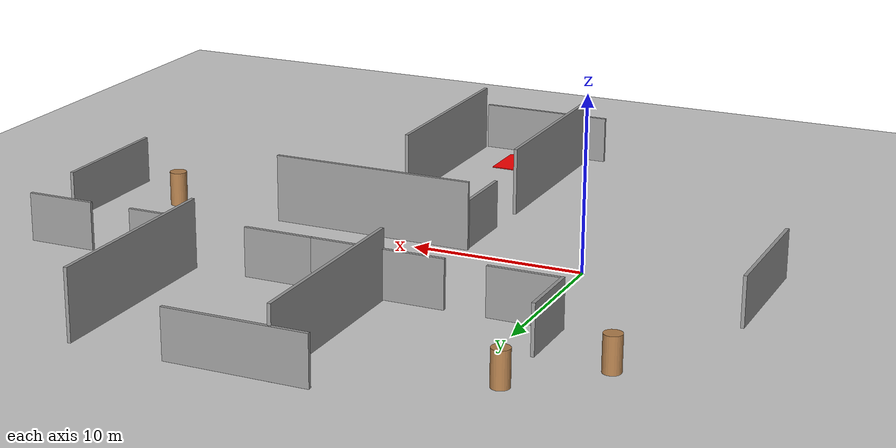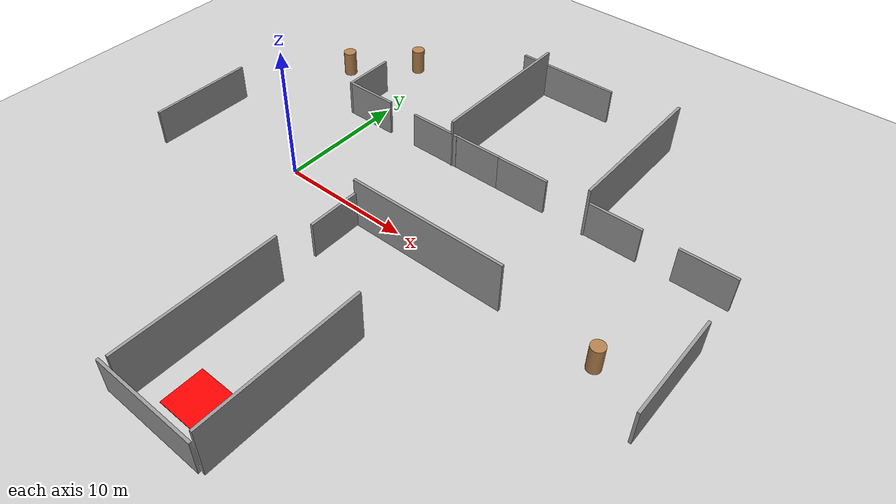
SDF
<sdf version="1.4">
 <world name="default">
  <scene><shadows>0</shadows></scene>
  <physics type="ode">
   <gravity>0 0 -9.81</gravity>
   <ode>
    <solver><type>quick</type><iters>20</iters><sor>1.0</sor></solver>
    <constraints>
     <cfm>0.0</cfm>
     <erp>0.2</erp>
     <contact_max_correcting_vel>100.0</contact_max_correcting_vel>
     <contact_surface_layer>0.0</contact_surface_layer>
    </constraints>
   </ode>
   <real_time_update_rate>1000</real_time_update_rate>
   <max_step_size>0.001</max_step_size>
   <real_time_factor>1</real_time_factor>
  </physics>
  <include><uri>model://sun</uri></include>
  <include><uri>model://ground_plane</uri></include>
  <include><uri>model://w1</uri><name>w1_bottom</name><pose>-10 0.0 0.0 0 0.0 -1.57</pose></include>
  <include><uri>model://w1</uri><name>w1_left</name><pose>10 20 0.0 0 0.0 0.0</pose></include>
  <include><uri>model://w1</uri><name>w1_top</name><pose>30 0.0 0.0 0 0.0 -1.57</pose></include>
  <include><uri>model://w1</uri><name>w1_right</name><pose>10 -20 0.0 0 0.0 0.0</pose></include>
  <include><uri>model://w3</uri><name>w3_no_room_1</name><pose>-6 12.1 0.0 0 0.0 0.0</pose></include>
  <include><uri>model://w3</uri><name>w3_no_room_2</name><pose>-1.9 16 0.0 0 0.0 1.57</pose></include>
  <include><uri>model://w2</uri><name>w3_room_1_1</name><pose>-1.9 10 0.0 0 0.0 1.57</pose></include>
  <include><uri>model://w2</uri><name>w3_room_1_2</name><pose>0.18 8.1 0.0 0 0.0 0.0</pose></include>
  <include><uri>model://w2</uri><name>w3_room_1_3</name><pose>6.5 8.1 0.0 0 0.0 0.0</pose></include>
  <include><uri>model://w4</uri><name>w4_room_1_3</name><pose>8.1 14 0.0 0 0.0 1.57</pose></include>
  <include><uri>model://w2</uri><name>w4_room_2_1</name><pose>10.17 8.11 0.0 0 0.0 0.0</pose></include>
  <include><uri>model://w2</uri><name>w4_room_2_2</name><pose>14.17 8.11 0.0 0 0.0 0.0</pose></include>
  <include><uri>model://w4</uri><name>w4_room_2_3</name><pose>19.4 14 0.0 0 0.0 1.57</pose></include>
  <include><uri>model://w2</uri><name>w4_room_3_1</name><pose>21.4 8.11 0.0 0 0.0 0.0</pose></include>
  <include><uri>model://w2</uri><name>w4_room_3_2</name><pose>27.9 8.11 0.0 0 0.0 0.0</pose></include>
  <include><uri>model://w4</uri><name>w4_warehouse_1</name><pose>7.2 -13.9 0.0 0 0.0 1.57</pose></include>
  <include><uri>model://w4</uri><name>w4_warehouse_2</name><pose>13.14 -1.0 0.0 0 0.0 0.0</pose></include>
  <include><uri>model://w3</uri><name>w4_warehouse_3</name><pose>25.9 -1.0 0.0 0 0.0 0.0</pose></include>
  <include><uri>model://w2</uri><name>w4_warehouse_4</name><pose>7.24 -3.1 0.0 0 0.0 1.57</pose></include>
  <include><uri>model://w4</uri><name>w4_warehouse_4</name><pose>14.2 -13.9 0.0 0 0.0 1.57</pose></include>
  <include>
   <uri>model://platform</uri>
   <name>recharge_platform</name>
   <pose>10.38 -17.2 0.035 0 0.0 0.0</pose>
  </include>
  <light name="marker_light" type="point">
   <cast_shadows>0</cast_shadows>
   <pose>1.7 7 1.8 0 0 0</pose>
   <diffuse>0.800000 0.800000 0.800000 1.000000</diffuse>
   <specular>0.100000 0.100000 0.100000 1.000000</specular>
   <attenuation>
    <range>1000.000000</range>
    <constant>0.900000</constant>
    <linear>0.010000</linear>
    <quadratic>0.001000</quadratic>
   </attenuation>
  </light>
  <light name="marker_light0" type="point">
   <cast_shadows>0</cast_shadows>
   <pose>6 -4.5 1.8 0 0 0</pose>
   <diffuse>0.800000 0.800000 0.800000 1.000000</diffuse>
   <specular>0.100000 0.100000 0.100000 1.000000</specular>
   <attenuation>
    <range>1000.000000</range>
    <constant>0.900000</constant>
    <linear>0.010000</linear>
    <quadratic>0.001000</quadratic>
   </attenuation>
  </light>
  <light name="marker_light01" type="point">
   <cast_shadows>0</cast_shadows>
   <pose>4 -4.5 1.8 0 0 0</pose>
   <diffuse>0.800000 0.800000 0.800000 1.000000</diffuse>
   <specular>0.100000 0.100000 0.100000 1.000000</specular>
   <attenuation>
    <range>1000.000000</range>
    <constant>0.900000</constant>
    <linear>0.010000</linear>
    <quadratic>0.001000</quadratic>
   </attenuation>
  </light>
  <light name="marker_light1" type="point">
   <cast_shadows>0</cast_shadows>
   <pose>24 18 1.8 0 0 0</pose>
   <diffuse>0.800000 0.800000 0.800000 1.000000</diffuse>
   <specular>0.100000 0.100000 0.100000 1.000000</specular>
   <attenuation>
    <range>1000.000000</range>
    <constant>0.900000</constant>
    <linear>0.010000</linear>
    <quadratic>0.001000</quadratic>
   </attenuation>
  </light>
  <light name="marker_light2" type="point">
   <cast_shadows>0</cast_shadows>
   <pose>13 18 1.8 0 0 0</pose>
   <diffuse>0.800000 0.800000 0.800000 1.000000</diffuse>
   <specular>0.100000 0.100000 0.100000 1.000000</specular>
   <attenuation>
    <range>1000.000000</range>
    <constant>0.900000</constant>
    <linear>0.010000</linear>
    <quadratic>0.001000</quadratic>
   </attenuation>
  </light>
  <light name="marker_light3" type="point">
   <cast_shadows>0</cast_shadows>
   <pose>3.4 18 1.8 0 0 0</pose>
   <diffuse>0.800000 0.800000 0.800000 1.000000</diffuse>
   <specular>0.100000 0.100000 0.100000 1.000000</specular>
   <attenuation>
    <range>1000.000000</range>
    <constant>0.900000</constant>
    <linear>0.010000</linear>
    <quadratic>0.001000</quadratic>
   </attenuation>
  </light>
  <light name="marker_light4" type="point">
   <cast_shadows>0</cast_shadows>
   <pose>20 4 1.8 0 0 0</pose>
   <diffuse>0.800000 0.800000 0.800000 1.000000</diffuse>
   <specular>0.100000 0.100000 0.100000 1.000000</specular>
   <attenuation>
    <range>1000.000000</range>
    <constant>0.900000</constant>
    <linear>0.010000</linear>
    <quadratic>0.001000</quadratic>
   </attenuation>
  </light>
  <light name="marker_light5" type="point">
   <cast_shadows>0</cast_shadows>
   <pose>15 4 1.8 0 0 0</pose>
   <diffuse>0.800000 0.800000 0.800000 1.000000</diffuse>
   <specular>0.100000 0.100000 0.100000 1.000000</specular>
   <attenuation>
    <range>1000.000000</range>
    <constant>0.900000</constant>
    <linear>0.010000</linear>
    <quadratic>0.001000</quadratic>
   </attenuation>
  </light>
  <light name="marker_light6" type="point">
   <cast_shadows>0</cast_shadows>
   <pose>25 -13 1.8 0 0 0</pose>
   <diffuse>0.800000 0.800000 0.800000 1.000000</diffuse>
   <specular>0.100000 0.100000 0.100000 1.000000</specular>
   <attenuation>
    <range>1000.000000</range>
    <constant>0.900000</constant>
    <linear>0.010000</linear>
    <quadratic>0.001000</quadratic>
   </attenuation>
  </light>
  <light type="directional" name="sun">
   <cast_shadows>false</cast_shadows>
   <pose>0 0 10 0 0 0</pose>
   <diffuse>0.8 0.8 0.8 1</diffuse>
   <specular>0.2 0.2 0.2 1</specular>
   <attenuation>
    <range>100</range>
    <constant>0.9</constant>
    <linear>0.01</linear>
    <quadratic>0.001</quadratic>
   </attenuation>
   <direction>-0.5 0.1 -0.9</direction>
  </light>
 </world>
</sdf>

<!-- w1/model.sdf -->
<sdf version="1.5">
  <model name="grey_wall">
    <static>true</static>
    <link name="link">
      <pose>0 0 1.4 0 0 0</pose>
      <collision name="collision">
        <geometry>
          <box>
            <size>8 0.2 2.8</size>
          </box>
        </geometry>
      </collision>
      <visual name="visual">
        <cast_shadows>false</cast_shadows>
        <geometry>
          <box>
            <size>8 0.2 2.8</size>
          </box>
        </geometry>
        <material>
          <script>
            <uri>model://w1/materials/scripts</uri>
            <uri>model://w1/materials/textures</uri>
            <name>vrc/grey_wall</name>
          </script>
        </material>
      </visual>
    </link>
  </model>
</sdf>

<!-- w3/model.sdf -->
<sdf version="1.5">
  <model name="grey_wall">
    <static>true</static>
    <link name="link">
      <pose>0 0 1 0 0 0</pose>
      <collision name="collision">
        <geometry>
          <cylinder>
            <radius>0.5</radius>
            <length>2</length>
          </cylinder>
        </geometry>
      </collision>
      <visual name="visual">
        <cast_shadows>false</cast_shadows>
        <geometry>
          <cylinder>
            <radius>0.5</radius>
            <length>2</length>
          </cylinder>
        </geometry>
        <material>
          <script>
            <uri>model://w3/materials/scripts</uri>
            <uri>model://w3/materials/textures</uri>
            <name>vrc/wood</name>
          </script>
        </material>
      </visual>
    </link>
  </model>
</sdf>

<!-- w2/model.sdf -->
<sdf version="1.5">
  <model name="grey_wall">
    <static>true</static>
    <link name="link">
      <pose>0 0 1.4 0 0 0</pose>
      <collision name="collision">
        <geometry>
          <box>
            <size>4 0.2 2.8</size>
          </box>
        </geometry>
      </collision>
      <visual name="visual">
        <cast_shadows>false</cast_shadows>
        <geometry>
          <box>
            <size>4 0.2 2.8</size>
          </box>
        </geometry>
        <material>
          <script>
            <uri>model://w2/materials/scripts</uri>
            <uri>model://w2/materials/textures</uri>
            <name>vrc/grey_wall</name>
          </script>
        </material>
      </visual>
    </link>
  </model>
</sdf>

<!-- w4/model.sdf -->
<sdf version="1.5">
  <model name="grey_wall">
    <static>true</static>
    <link name="link">
      <pose>0 0 1.4 0 0 0</pose>
      <collision name="collision">
        <geometry>
          <box>
            <size>12 0.2 5</size>
          </box>
        </geometry>
      </collision>
      <visual name="visual">
        <cast_shadows>false</cast_shadows>
        <geometry>
          <box>
            <size>12 0.2 5</size>
          </box>
        </geometry>
        <material>
          <script>
            <uri>model://w4/materials/scripts</uri>
            <uri>model://w4/materials/textures</uri>
            <name>vrc/grey_wall</name>
          </script>
        </material>
      </visual>
    </link>
  </model>
</sdf>

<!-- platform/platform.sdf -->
<sdf version='1.6'>
  <model name='platform'>
		<static>1</static>
    <link name='link'>
      <pose frame=''>0 0 0.0 0 -0 0</pose>

      <visual name='visual'>
        <geometry>
          <box>
            <size>3 3 .05</size>
          </box>
        </geometry>
 <material>
          <ambient>1 0 0 1</ambient>
          <diffuse>1 0 0 1</diffuse>
          <specular>0.1 0.1 0.1 1</specular>
          <emissive>0 0 0 0</emissive>
        </material>
      </visual>
     </link>
  </model>
</sdf>
